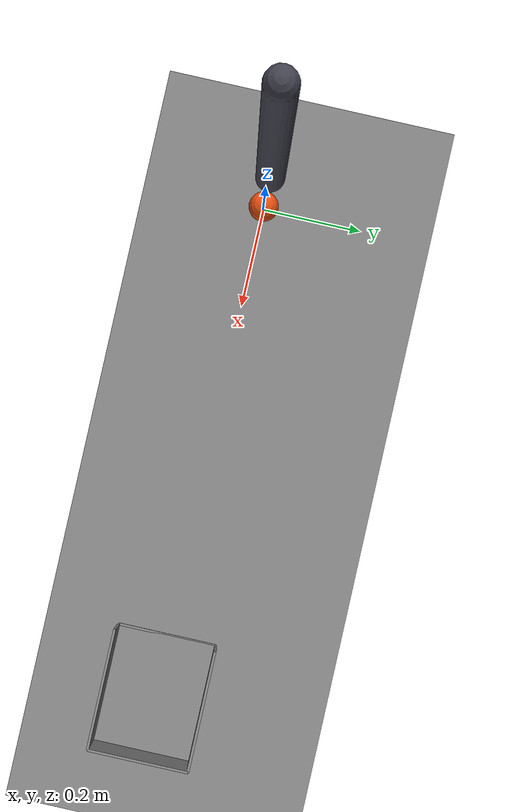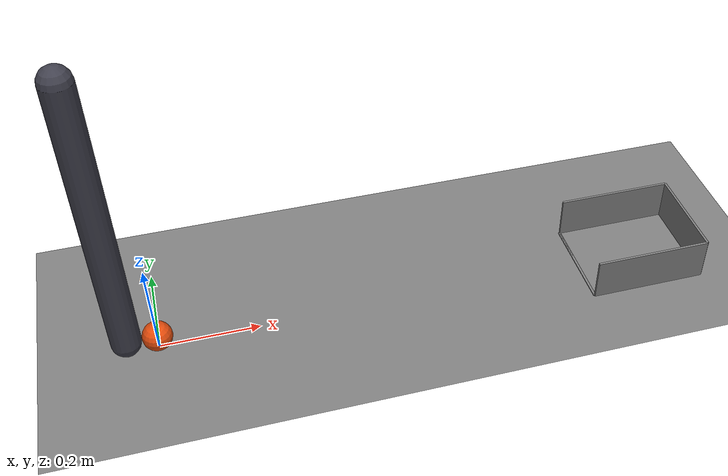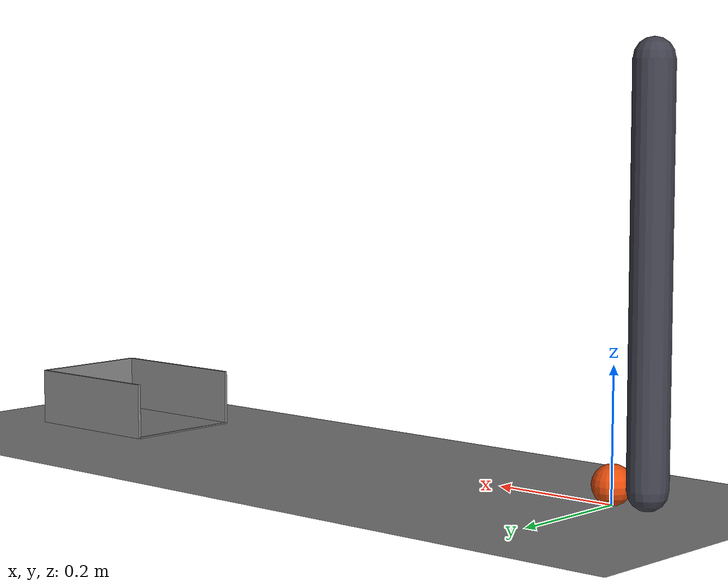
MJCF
<mujoco model="pendulum_rolls_a_ball_into_a_cup">
  <compiler angle="radian"/>
  <option timestep="0.002"/>
  <worldbody>
    <geom name="floor" type="plane" size="4 4 0.1" friction="0.6 0.001 0.0005"/>
    <body name="ball" pos="0 0 0.03">
      <freejoint/>
      <geom name="ball" type="sphere" pos="0 0 0" size="0.03" mass="0.08" condim="6" friction="0.6 0.001 0.0005" solref="0.01 1" rgba="0.9 0.3 0.05 1"/>
    </body>
    <body name="pivot">
    </body>
    <body name="pendulum tip">
    </body>
    <body name="pendulum" pos="-0.06 0 0.63">
      <joint name="swing_axis" type="hinge" pos="0 0 0" axis="0 1 0" limited="true" range="-1.22173 1.22173" damping="0.005"/>
      <geom name="pendulum" type="capsule" size="0.03" fromto="0 0 0 0 0 -0.6" mass="0.35" solref="0.01 1" rgba="0.25 0.25 0.3 1"/>
    </body>
    <body name="cup">
      <geom name="cup_base" type="box" pos="1 0 0.001" size="0.12 0.1 0.001" friction="0.8 0.005 0.005" solref="0.01 1"/>
      <geom name="cup_near_wall" type="box" pos="0.88 0 0.001" size="0.0025 0.1 0.001" solref="0.01 1"/>
      <geom name="cup_far_wall" type="box" pos="1.12 0 0.045" size="0.0025 0.1 0.045" solref="0.01 1"/>
      <geom name="cup_left_wall" type="box" pos="1 0.1 0.045" size="0.12 0.0025 0.045" solref="0.01 1"/>
      <geom name="cup_right_wall" type="box" pos="1 -0.1 0.045" size="0.12 0.0025 0.045" solref="0.01 1"/>
    </body>
  </worldbody>
  <keyframe>
    <key name="start" qpos="0 0 0.03 1 0 0 0 0.610865" qvel="0 0 0 0 0 0 0"/>
  </keyframe>
</mujoco>
